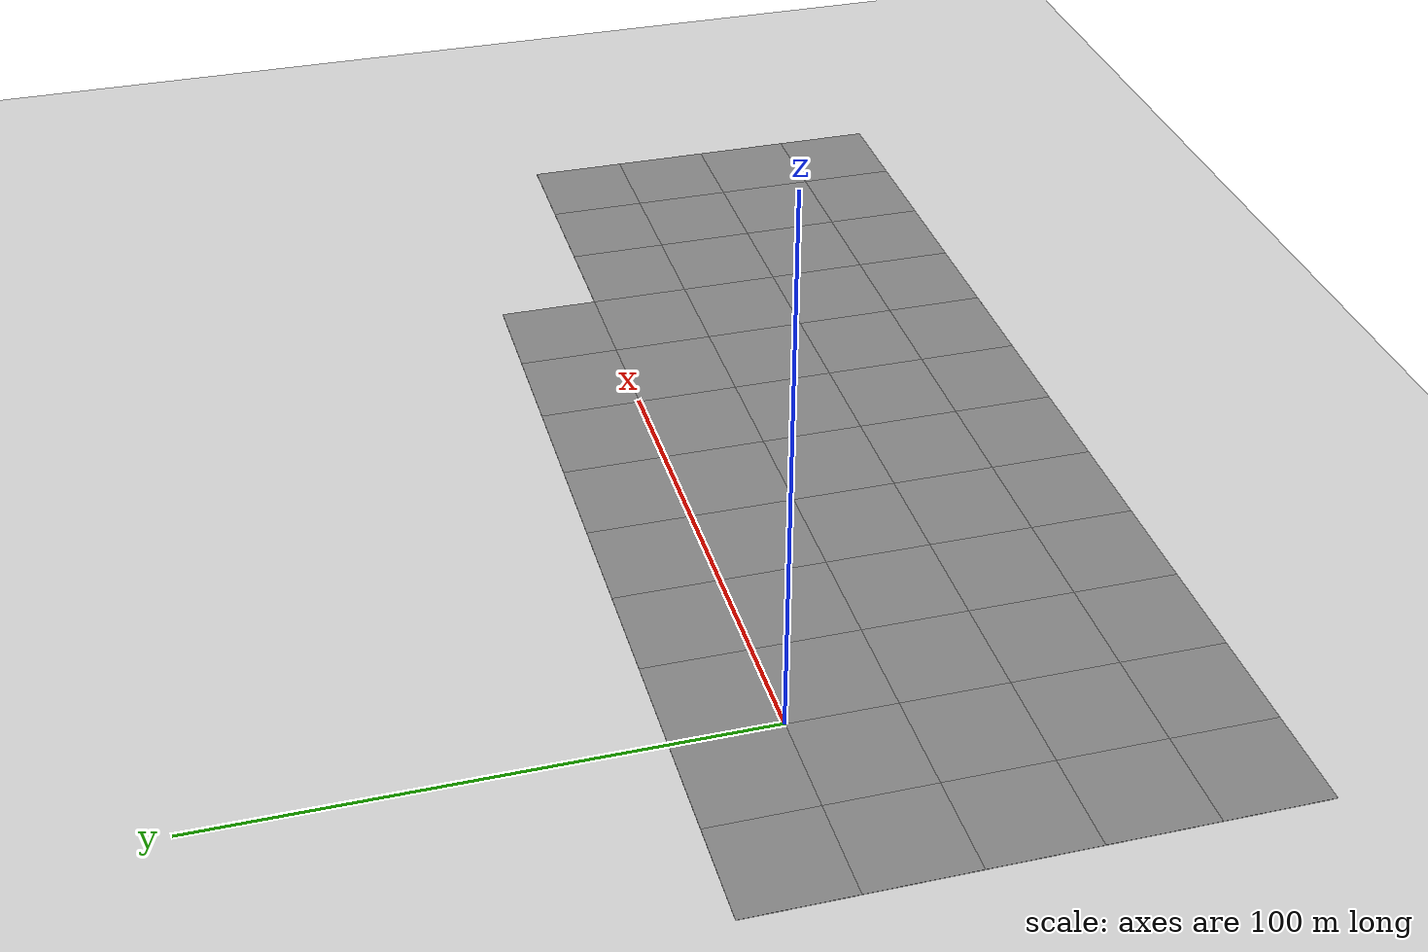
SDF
<sdf version="1.9">
 <world name="test_city_4">
  <model name="ground_plane">
   <static>true</static>
   <link name="link">
    <collision name="collision">
     <geometry><plane><normal>0 0 1</normal><size>500 500</size></plane></geometry>
    </collision>
    <visual name="visual">
     <geometry><plane><normal>0 0 1</normal><size>500 500</size></plane></geometry>
     <material>
      <ambient>0.8 0.8 0.8 1</ambient>
      <diffuse>0.8 0.8 0.8 1</diffuse>
      <specular>0.8 0.8 0.8 1</specular>
     </material>
    </visual>
   </link>
  </model>
  <model name="asphalt_plane">
   <static>1</static>
   <link name="link">
    <collision name="collision"><geometry><box><size>20 20 0.1</size></box></geometry></collision>
    <visual name="visual">
     <cast_shadows>0</cast_shadows>
     <geometry><box><size>20 20 0.1</size></box></geometry>
     <material>
      <ambient>0.5 0.5 0.5 1</ambient>
      <diffuse>0.5 0.5 0.5 1</diffuse>
      <specular>0.2 0.2 0.2 1</specular>
      <pbr><metal><albedo_map>model://asphalt_plane/materials/textures/tarmac.png</albedo_map></metal></pbr>
     </material>
    </visual>
   </link>
   <pose>-30 -30 0 0 0 0</pose>
  </model>
  <model name="asphalt_plane_1">
   <static>1</static>
   <link name="link">
    <collision name="collision"><geometry><box><size>20 20 0.1</size></box></geometry></collision>
    <visual name="visual">
     <cast_shadows>0</cast_shadows>
     <geometry><box><size>20 20 0.1</size></box></geometry>
     <material>
      <ambient>0.5 0.5 0.5 1</ambient>
      <diffuse>0.5 0.5 0.5 1</diffuse>
      <specular>0.2 0.2 0.2 1</specular>
      <pbr><metal><albedo_map>model://asphalt_plane/materials/textures/tarmac.png</albedo_map></metal></pbr>
     </material>
    </visual>
   </link>
   <pose>-30 -10 0 0 0 0</pose>
  </model>
  <model name="asphalt_plane_2">
   <static>1</static>
   <link name="link">
    <collision name="collision"><geometry><box><size>20 20 0.1</size></box></geometry></collision>
    <visual name="visual">
     <cast_shadows>0</cast_shadows>
     <geometry><box><size>20 20 0.1</size></box></geometry>
     <material>
      <ambient>0.5 0.5 0.5 1</ambient>
      <diffuse>0.5 0.5 0.5 1</diffuse>
      <specular>0.2 0.2 0.2 1</specular>
      <pbr><metal><albedo_map>model://asphalt_plane/materials/textures/tarmac.png</albedo_map></metal></pbr>
     </material>
    </visual>
   </link>
   <pose>-30 10 0 0 0 0</pose>
  </model>
  <model name="asphalt_plane_12">
   <static>1</static>
   <link name="link">
    <collision name="collision"><geometry><box><size>20 20 0.1</size></box></geometry></collision>
    <visual name="visual">
     <cast_shadows>0</cast_shadows>
     <geometry><box><size>20 20 0.1</size></box></geometry>
     <material>
      <ambient>0.5 0.5 0.5 1</ambient>
      <diffuse>0.5 0.5 0.5 1</diffuse>
      <specular>0.2 0.2 0.2 1</specular>
      <pbr><metal><albedo_map>model://asphalt_plane/materials/textures/tarmac.png</albedo_map></metal></pbr>
     </material>
    </visual>
   </link>
   <pose>-10 -30 0 0 0 0</pose>
  </model>
  <model name="asphalt_plane_13">
   <static>1</static>
   <link name="link">
    <collision name="collision"><geometry><box><size>20 20 0.1</size></box></geometry></collision>
    <visual name="visual">
     <cast_shadows>0</cast_shadows>
     <geometry><box><size>20 20 0.1</size></box></geometry>
     <material>
      <ambient>0.5 0.5 0.5 1</ambient>
      <diffuse>0.5 0.5 0.5 1</diffuse>
      <specular>0.2 0.2 0.2 1</specular>
      <pbr><metal><albedo_map>model://asphalt_plane/materials/textures/tarmac.png</albedo_map></metal></pbr>
     </material>
    </visual>
   </link>
   <pose>-10 -10 0 0 0 0</pose>
  </model>
  <model name="asphalt_plane_14">
   <static>1</static>
   <link name="link">
    <collision name="collision"><geometry><box><size>20 20 0.1</size></box></geometry></collision>
    <visual name="visual">
     <cast_shadows>0</cast_shadows>
     <geometry><box><size>20 20 0.1</size></box></geometry>
     <material>
      <ambient>0.5 0.5 0.5 1</ambient>
      <diffuse>0.5 0.5 0.5 1</diffuse>
      <specular>0.2 0.2 0.2 1</specular>
      <pbr><metal><albedo_map>model://asphalt_plane/materials/textures/tarmac.png</albedo_map></metal></pbr>
     </material>
    </visual>
   </link>
   <pose>-10 10 0 0 0 0</pose>
  </model>
  <model name="asphalt_plane_24">
   <static>1</static>
   <link name="link">
    <collision name="collision"><geometry><box><size>20 20 0.1</size></box></geometry></collision>
    <visual name="visual">
     <cast_shadows>0</cast_shadows>
     <geometry><box><size>20 20 0.1</size></box></geometry>
     <material>
      <ambient>0.5 0.5 0.5 1</ambient>
      <diffuse>0.5 0.5 0.5 1</diffuse>
      <specular>0.2 0.2 0.2 1</specular>
      <pbr><metal><albedo_map>model://asphalt_plane/materials/textures/tarmac.png</albedo_map></metal></pbr>
     </material>
    </visual>
   </link>
   <pose>10 -30 0 0 0 0</pose>
  </model>
  <model name="asphalt_plane_25">
   <static>1</static>
   <link name="link">
    <collision name="collision"><geometry><box><size>20 20 0.1</size></box></geometry></collision>
    <visual name="visual">
     <cast_shadows>0</cast_shadows>
     <geometry><box><size>20 20 0.1</size></box></geometry>
     <material>
      <ambient>0.5 0.5 0.5 1</ambient>
      <diffuse>0.5 0.5 0.5 1</diffuse>
      <specular>0.2 0.2 0.2 1</specular>
      <pbr><metal><albedo_map>model://asphalt_plane/materials/textures/tarmac.png</albedo_map></metal></pbr>
     </material>
    </visual>
   </link>
   <pose>10 -10 0 0 0 0</pose>
  </model>
  <model name="asphalt_plane_26">
   <static>1</static>
   <link name="link">
    <collision name="collision"><geometry><box><size>20 20 0.1</size></box></geometry></collision>
    <visual name="visual">
     <cast_shadows>0</cast_shadows>
     <geometry><box><size>20 20 0.1</size></box></geometry>
     <material>
      <ambient>0.5 0.5 0.5 1</ambient>
      <diffuse>0.5 0.5 0.5 1</diffuse>
      <specular>0.2 0.2 0.2 1</specular>
      <pbr><metal><albedo_map>model://asphalt_plane/materials/textures/tarmac.png</albedo_map></metal></pbr>
     </material>
    </visual>
   </link>
   <pose>10 10 0 0 0 0</pose>
  </model>
  <model name="asphalt_plane_36">
   <static>1</static>
   <link name="link">
    <collision name="collision"><geometry><box><size>20 20 0.1</size></box></geometry></collision>
    <visual name="visual">
     <cast_shadows>0</cast_shadows>
     <geometry><box><size>20 20 0.1</size></box></geometry>
     <material>
      <ambient>0.5 0.5 0.5 1</ambient>
      <diffuse>0.5 0.5 0.5 1</diffuse>
      <specular>0.2 0.2 0.2 1</specular>
      <pbr><metal><albedo_map>model://asphalt_plane/materials/textures/tarmac.png</albedo_map></metal></pbr>
     </material>
    </visual>
   </link>
   <pose>30 -30 0 0 0 0</pose>
  </model>
  <model name="asphalt_plane_37">
   <static>1</static>
   <link name="link">
    <collision name="collision"><geometry><box><size>20 20 0.1</size></box></geometry></collision>
    <visual name="visual">
     <cast_shadows>0</cast_shadows>
     <geometry><box><size>20 20 0.1</size></box></geometry>
     <material>
      <ambient>0.5 0.5 0.5 1</ambient>
      <diffuse>0.5 0.5 0.5 1</diffuse>
      <specular>0.2 0.2 0.2 1</specular>
      <pbr><metal><albedo_map>model://asphalt_plane/materials/textures/tarmac.png</albedo_map></metal></pbr>
     </material>
    </visual>
   </link>
   <pose>30 -10 0 0 0 0</pose>
  </model>
  <model name="asphalt_plane_38">
   <static>1</static>
   <link name="link">
    <collision name="collision"><geometry><box><size>20 20 0.1</size></box></geometry></collision>
    <visual name="visual">
     <cast_shadows>0</cast_shadows>
     <geometry><box><size>20 20 0.1</size></box></geometry>
     <material>
      <ambient>0.5 0.5 0.5 1</ambient>
      <diffuse>0.5 0.5 0.5 1</diffuse>
      <specular>0.2 0.2 0.2 1</specular>
      <pbr><metal><albedo_map>model://asphalt_plane/materials/textures/tarmac.png</albedo_map></metal></pbr>
     </material>
    </visual>
   </link>
   <pose>30 10 0 0 0 0</pose>
  </model>
  <model name="asphalt_plane_48">
   <static>1</static>
   <link name="link">
    <collision name="collision"><geometry><box><size>20 20 0.1</size></box></geometry></collision>
    <visual name="visual">
     <cast_shadows>0</cast_shadows>
     <geometry><box><size>20 20 0.1</size></box></geometry>
     <material>
      <ambient>0.5 0.5 0.5 1</ambient>
      <diffuse>0.5 0.5 0.5 1</diffuse>
      <specular>0.2 0.2 0.2 1</specular>
      <pbr><metal><albedo_map>model://asphalt_plane/materials/textures/tarmac.png</albedo_map></metal></pbr>
     </material>
    </visual>
   </link>
   <pose>50 -30 0 0 0 0</pose>
  </model>
  <model name="asphalt_plane_49">
   <static>1</static>
   <link name="link">
    <collision name="collision"><geometry><box><size>20 20 0.1</size></box></geometry></collision>
    <visual name="visual">
     <cast_shadows>0</cast_shadows>
     <geometry><box><size>20 20 0.1</size></box></geometry>
     <material>
      <ambient>0.5 0.5 0.5 1</ambient>
      <diffuse>0.5 0.5 0.5 1</diffuse>
      <specular>0.2 0.2 0.2 1</specular>
      <pbr><metal><albedo_map>model://asphalt_plane/materials/textures/tarmac.png</albedo_map></metal></pbr>
     </material>
    </visual>
   </link>
   <pose>50 -10 0 0 0 0</pose>
  </model>
  <model name="asphalt_plane_50">
   <static>1</static>
   <link name="link">
    <collision name="collision"><geometry><box><size>20 20 0.1</size></box></geometry></collision>
    <visual name="visual">
     <cast_shadows>0</cast_shadows>
     <geometry><box><size>20 20 0.1</size></box></geometry>
     <material>
      <ambient>0.5 0.5 0.5 1</ambient>
      <diffuse>0.5 0.5 0.5 1</diffuse>
      <specular>0.2 0.2 0.2 1</specular>
      <pbr><metal><albedo_map>model://asphalt_plane/materials/textures/tarmac.png</albedo_map></metal></pbr>
     </material>
    </visual>
   </link>
   <pose>50 10 0 0 0 0</pose>
  </model>
  <model name="asphalt_plane_60">
   <static>1</static>
   <link name="link">
    <collision name="collision"><geometry><box><size>20 20 0.1</size></box></geometry></collision>
    <visual name="visual">
     <cast_shadows>0</cast_shadows>
     <geometry><box><size>20 20 0.1</size></box></geometry>
     <material>
      <ambient>0.5 0.5 0.5 1</ambient>
      <diffuse>0.5 0.5 0.5 1</diffuse>
      <specular>0.2 0.2 0.2 1</specular>
      <pbr><metal><albedo_map>model://asphalt_plane/materials/textures/tarmac.png</albedo_map></metal></pbr>
     </material>
    </visual>
   </link>
   <pose>70 -30 0 0 0 0</pose>
  </model>
  <model name="asphalt_plane_61">
   <static>1</static>
   <link name="link">
    <collision name="collision"><geometry><box><size>20 20 0.1</size></box></geometry></collision>
    <visual name="visual">
     <cast_shadows>0</cast_shadows>
     <geometry><box><size>20 20 0.1</size></box></geometry>
     <material>
      <ambient>0.5 0.5 0.5 1</ambient>
      <diffuse>0.5 0.5 0.5 1</diffuse>
      <specular>0.2 0.2 0.2 1</specular>
      <pbr><metal><albedo_map>model://asphalt_plane/materials/textures/tarmac.png</albedo_map></metal></pbr>
     </material>
    </visual>
   </link>
   <pose>70 -10 0 0 0 0</pose>
  </model>
  <model name="asphalt_plane_62">
   <static>1</static>
   <link name="link">
    <collision name="collision"><geometry><box><size>20 20 0.1</size></box></geometry></collision>
    <visual name="visual">
     <cast_shadows>0</cast_shadows>
     <geometry><box><size>20 20 0.1</size></box></geometry>
     <material>
      <ambient>0.5 0.5 0.5 1</ambient>
      <diffuse>0.5 0.5 0.5 1</diffuse>
      <specular>0.2 0.2 0.2 1</specular>
      <pbr><metal><albedo_map>model://asphalt_plane/materials/textures/tarmac.png</albedo_map></metal></pbr>
     </material>
    </visual>
   </link>
   <pose>70 10 0 0 0 0</pose>
  </model>
  <model name="asphalt_plane_72">
   <static>1</static>
   <link name="link">
    <collision name="collision"><geometry><box><size>20 20 0.1</size></box></geometry></collision>
    <visual name="visual">
     <cast_shadows>0</cast_shadows>
     <geometry><box><size>20 20 0.1</size></box></geometry>
     <material>
      <ambient>0.5 0.5 0.5 1</ambient>
      <diffuse>0.5 0.5 0.5 1</diffuse>
      <specular>0.2 0.2 0.2 1</specular>
      <pbr><metal><albedo_map>model://asphalt_plane/materials/textures/tarmac.png</albedo_map></metal></pbr>
     </material>
    </visual>
   </link>
   <pose>90 -30 0 0 0 0</pose>
  </model>
  <model name="asphalt_plane_73">
   <static>1</static>
   <link name="link">
    <collision name="collision"><geometry><box><size>20 20 0.1</size></box></geometry></collision>
    <visual name="visual">
     <cast_shadows>0</cast_shadows>
     <geometry><box><size>20 20 0.1</size></box></geometry>
     <material>
      <ambient>0.5 0.5 0.5 1</ambient>
      <diffuse>0.5 0.5 0.5 1</diffuse>
      <specular>0.2 0.2 0.2 1</specular>
      <pbr><metal><albedo_map>model://asphalt_plane/materials/textures/tarmac.png</albedo_map></metal></pbr>
     </material>
    </visual>
   </link>
   <pose>90 -10 0 0 0 0</pose>
  </model>
  <model name="asphalt_plane_74">
   <static>1</static>
   <link name="link">
    <collision name="collision"><geometry><box><size>20 20 0.1</size></box></geometry></collision>
    <visual name="visual">
     <cast_shadows>0</cast_shadows>
     <geometry><box><size>20 20 0.1</size></box></geometry>
     <material>
      <ambient>0.5 0.5 0.5 1</ambient>
      <diffuse>0.5 0.5 0.5 1</diffuse>
      <specular>0.2 0.2 0.2 1</specular>
      <pbr><metal><albedo_map>model://asphalt_plane/materials/textures/tarmac.png</albedo_map></metal></pbr>
     </material>
    </visual>
   </link>
   <pose>90 10 0 0 0 0</pose>
  </model>
  <model name="asphalt_plane_84">
   <static>1</static>
   <link name="link">
    <collision name="collision"><geometry><box><size>20 20 0.1</size></box></geometry></collision>
    <visual name="visual">
     <cast_shadows>0</cast_shadows>
     <geometry><box><size>20 20 0.1</size></box></geometry>
     <material>
      <ambient>0.5 0.5 0.5 1</ambient>
      <diffuse>0.5 0.5 0.5 1</diffuse>
      <specular>0.2 0.2 0.2 1</specular>
      <pbr><metal><albedo_map>model://asphalt_plane/materials/textures/tarmac.png</albedo_map></metal></pbr>
     </material>
    </visual>
   </link>
   <pose>110 -30 0 0 0 0</pose>
  </model>
  <model name="asphalt_plane_85">
   <static>1</static>
   <link name="link">
    <collision name="collision"><geometry><box><size>20 20 0.1</size></box></geometry></collision>
    <visual name="visual">
     <cast_shadows>0</cast_shadows>
     <geometry><box><size>20 20 0.1</size></box></geometry>
     <material>
      <ambient>0.5 0.5 0.5 1</ambient>
      <diffuse>0.5 0.5 0.5 1</diffuse>
      <specular>0.2 0.2 0.2 1</specular>
      <pbr><metal><albedo_map>model://asphalt_plane/materials/textures/tarmac.png</albedo_map></metal></pbr>
     </material>
    </visual>
   </link>
   <pose>110 -10 0 0 0 0</pose>
  </model>
  <model name="asphalt_plane_86">
   <static>1</static>
   <link name="link">
    <collision name="collision"><geometry><box><size>20 20 0.1</size></box></geometry></collision>
    <visual name="visual">
     <cast_shadows>0</cast_shadows>
     <geometry><box><size>20 20 0.1</size></box></geometry>
     <material>
      <ambient>0.5 0.5 0.5 1</ambient>
      <diffuse>0.5 0.5 0.5 1</diffuse>
      <specular>0.2 0.2 0.2 1</specular>
      <pbr><metal><albedo_map>model://asphalt_plane/materials/textures/tarmac.png</albedo_map></metal></pbr>
     </material>
    </visual>
   </link>
   <pose>110 10 0 0 0 0</pose>
  </model>
  <model name="asphalt_plane_96">
   <static>1</static>
   <link name="link">
    <collision name="collision"><geometry><box><size>20 20 0.1</size></box></geometry></collision>
    <visual name="visual">
     <cast_shadows>0</cast_shadows>
     <geometry><box><size>20 20 0.1</size></box></geometry>
     <material>
      <ambient>0.5 0.5 0.5 1</ambient>
      <diffuse>0.5 0.5 0.5 1</diffuse>
      <specular>0.2 0.2 0.2 1</specular>
      <pbr><metal><albedo_map>model://asphalt_plane/materials/textures/tarmac.png</albedo_map></metal></pbr>
     </material>
    </visual>
   </link>
   <pose>130 -30 0 0 0 0</pose>
  </model>
  <model name="asphalt_plane_97">
   <static>1</static>
   <link name="link">
    <collision name="collision"><geometry><box><size>20 20 0.1</size></box></geometry></collision>
    <visual name="visual">
     <cast_shadows>0</cast_shadows>
     <geometry><box><size>20 20 0.1</size></box></geometry>
     <material>
      <ambient>0.5 0.5 0.5 1</ambient>
      <diffuse>0.5 0.5 0.5 1</diffuse>
      <specular>0.2 0.2 0.2 1</specular>
      <pbr><metal><albedo_map>model://asphalt_plane/materials/textures/tarmac.png</albedo_map></metal></pbr>
     </material>
    </visual>
   </link>
   <pose>130 -10 0 0 0 0</pose>
  </model>
  <model name="asphalt_plane_98">
   <static>1</static>
   <link name="link">
    <collision name="collision"><geometry><box><size>20 20 0.1</size></box></geometry></collision>
    <visual name="visual">
     <cast_shadows>0</cast_shadows>
     <geometry><box><size>20 20 0.1</size></box></geometry>
     <material>
      <ambient>0.5 0.5 0.5 1</ambient>
      <diffuse>0.5 0.5 0.5 1</diffuse>
      <specular>0.2 0.2 0.2 1</specular>
      <pbr><metal><albedo_map>model://asphalt_plane/materials/textures/tarmac.png</albedo_map></metal></pbr>
     </material>
    </visual>
   </link>
   <pose>130 10 0 0 0 0</pose>
  </model>
  <model name="asphalt_plane_108">
   <static>1</static>
   <link name="link">
    <collision name="collision"><geometry><box><size>20 20 0.1</size></box></geometry></collision>
    <visual name="visual">
     <cast_shadows>0</cast_shadows>
     <geometry><box><size>20 20 0.1</size></box></geometry>
     <material>
      <ambient>0.5 0.5 0.5 1</ambient>
      <diffuse>0.5 0.5 0.5 1</diffuse>
      <specular>0.2 0.2 0.2 1</specular>
      <pbr><metal><albedo_map>model://asphalt_plane/materials/textures/tarmac.png</albedo_map></metal></pbr>
     </material>
    </visual>
   </link>
   <pose>150 -30 0 0 0 0</pose>
  </model>
  <model name="asphalt_plane_109">
   <static>1</static>
   <link name="link">
    <collision name="collision"><geometry><box><size>20 20 0.1</size></box></geometry></collision>
    <visual name="visual">
     <cast_shadows>0</cast_shadows>
     <geometry><box><size>20 20 0.1</size></box></geometry>
     <material>
      <ambient>0.5 0.5 0.5 1</ambient>
      <diffuse>0.5 0.5 0.5 1</diffuse>
      <specular>0.2 0.2 0.2 1</specular>
      <pbr><metal><albedo_map>model://asphalt_plane/materials/textures/tarmac.png</albedo_map></metal></pbr>
     </material>
    </visual>
   </link>
   <pose>150 -10 0 0 0 0</pose>
  </model>
  <model name="asphalt_plane_120">
   <static>1</static>
   <link name="link">
    <collision name="collision"><geometry><box><size>20 20 0.1</size></box></geometry></collision>
    <visual name="visual">
     <cast_shadows>0</cast_shadows>
     <geometry><box><size>20 20 0.1</size></box></geometry>
     <material>
      <ambient>0.5 0.5 0.5 1</ambient>
      <diffuse>0.5 0.5 0.5 1</diffuse>
      <specular>0.2 0.2 0.2 1</specular>
      <pbr><metal><albedo_map>model://asphalt_plane/materials/textures/tarmac.png</albedo_map></metal></pbr>
     </material>
    </visual>
   </link>
   <pose>170 -30 0 0 0 0</pose>
  </model>
  <model name="asphalt_plane_121">
   <static>1</static>
   <link name="link">
    <collision name="collision"><geometry><box><size>20 20 0.1</size></box></geometry></collision>
    <visual name="visual">
     <cast_shadows>0</cast_shadows>
     <geometry><box><size>20 20 0.1</size></box></geometry>
     <material>
      <ambient>0.5 0.5 0.5 1</ambient>
      <diffuse>0.5 0.5 0.5 1</diffuse>
      <specular>0.2 0.2 0.2 1</specular>
      <pbr><metal><albedo_map>model://asphalt_plane/materials/textures/tarmac.png</albedo_map></metal></pbr>
     </material>
    </visual>
   </link>
   <pose>170 -10 0 0 0 0</pose>
  </model>
  <model name="asphalt_plane_132">
   <static>1</static>
   <link name="link">
    <collision name="collision"><geometry><box><size>20 20 0.1</size></box></geometry></collision>
    <visual name="visual">
     <cast_shadows>0</cast_shadows>
     <geometry><box><size>20 20 0.1</size></box></geometry>
     <material>
      <ambient>0.5 0.5 0.5 1</ambient>
      <diffuse>0.5 0.5 0.5 1</diffuse>
      <specular>0.2 0.2 0.2 1</specular>
      <pbr><metal><albedo_map>model://asphalt_plane/materials/textures/tarmac.png</albedo_map></metal></pbr>
     </material>
    </visual>
   </link>
   <pose>190 -30 0 0 0 0</pose>
  </model>
  <model name="asphalt_plane_133">
   <static>1</static>
   <link name="link">
    <collision name="collision"><geometry><box><size>20 20 0.1</size></box></geometry></collision>
    <visual name="visual">
     <cast_shadows>0</cast_shadows>
     <geometry><box><size>20 20 0.1</size></box></geometry>
     <material>
      <ambient>0.5 0.5 0.5 1</ambient>
      <diffuse>0.5 0.5 0.5 1</diffuse>
      <specular>0.2 0.2 0.2 1</specular>
      <pbr><metal><albedo_map>model://asphalt_plane/materials/textures/tarmac.png</albedo_map></metal></pbr>
     </material>
    </visual>
   </link>
   <pose>190 -10 0 0 0 0</pose>
  </model>
  <model name="asphalt_plane_144">
   <static>1</static>
   <link name="link">
    <collision name="collision"><geometry><box><size>20 20 0.1</size></box></geometry></collision>
    <visual name="visual">
     <cast_shadows>0</cast_shadows>
     <geometry><box><size>20 20 0.1</size></box></geometry>
     <material>
      <ambient>0.5 0.5 0.5 1</ambient>
      <diffuse>0.5 0.5 0.5 1</diffuse>
      <specular>0.2 0.2 0.2 1</specular>
      <pbr><metal><albedo_map>model://asphalt_plane/materials/textures/tarmac.png</albedo_map></metal></pbr>
     </material>
    </visual>
   </link>
   <pose>-30 -50 0 0 0 0</pose>
  </model>
  <model name="asphalt_plane_145">
   <static>1</static>
   <link name="link">
    <collision name="collision"><geometry><box><size>20 20 0.1</size></box></geometry></collision>
    <visual name="visual">
     <cast_shadows>0</cast_shadows>
     <geometry><box><size>20 20 0.1</size></box></geometry>
     <material>
      <ambient>0.5 0.5 0.5 1</ambient>
      <diffuse>0.5 0.5 0.5 1</diffuse>
      <specular>0.2 0.2 0.2 1</specular>
      <pbr><metal><albedo_map>model://asphalt_plane/materials/textures/tarmac.png</albedo_map></metal></pbr>
     </material>
    </visual>
   </link>
   <pose>-10 -50 0 0 0 0</pose>
  </model>
  <model name="asphalt_plane_146">
   <static>1</static>
   <link name="link">
    <collision name="collision"><geometry><box><size>20 20 0.1</size></box></geometry></collision>
    <visual name="visual">
     <cast_shadows>0</cast_shadows>
     <geometry><box><size>20 20 0.1</size></box></geometry>
     <material>
      <ambient>0.5 0.5 0.5 1</ambient>
      <diffuse>0.5 0.5 0.5 1</diffuse>
      <specular>0.2 0.2 0.2 1</specular>
      <pbr><metal><albedo_map>model://asphalt_plane/materials/textures/tarmac.png</albedo_map></metal></pbr>
     </material>
    </visual>
   </link>
   <pose>10 -50 0 0 0 0</pose>
  </model>
  <model name="asphalt_plane_147">
   <static>1</static>
   <link name="link">
    <collision name="collision"><geometry><box><size>20 20 0.1</size></box></geometry></collision>
    <visual name="visual">
     <cast_shadows>0</cast_shadows>
     <geometry><box><size>20 20 0.1</size></box></geometry>
     <material>
      <ambient>0.5 0.5 0.5 1</ambient>
      <diffuse>0.5 0.5 0.5 1</diffuse>
      <specular>0.2 0.2 0.2 1</specular>
      <pbr><metal><albedo_map>model://asphalt_plane/materials/textures/tarmac.png</albedo_map></metal></pbr>
     </material>
    </visual>
   </link>
   <pose>30 -50 0 0 0 0</pose>
  </model>
  <model name="asphalt_plane_148">
   <static>1</static>
   <link name="link">
    <collision name="collision"><geometry><box><size>20 20 0.1</size></box></geometry></collision>
    <visual name="visual">
     <cast_shadows>0</cast_shadows>
     <geometry><box><size>20 20 0.1</size></box></geometry>
     <material>
      <ambient>0.5 0.5 0.5 1</ambient>
      <diffuse>0.5 0.5 0.5 1</diffuse>
      <specular>0.2 0.2 0.2 1</specular>
      <pbr><metal><albedo_map>model://asphalt_plane/materials/textures/tarmac.png</albedo_map></metal></pbr>
     </material>
    </visual>
   </link>
   <pose>50 -50 0 0 0 0</pose>
  </model>
  <model name="asphalt_plane_149">
   <static>1</static>
   <link name="link">
    <collision name="collision"><geometry><box><size>20 20 0.1</size></box></geometry></collision>
    <visual name="visual">
     <cast_shadows>0</cast_shadows>
     <geometry><box><size>20 20 0.1</size></box></geometry>
     <material>
      <ambient>0.5 0.5 0.5 1</ambient>
      <diffuse>0.5 0.5 0.5 1</diffuse>
      <specular>0.2 0.2 0.2 1</specular>
      <pbr><metal><albedo_map>model://asphalt_plane/materials/textures/tarmac.png</albedo_map></metal></pbr>
     </material>
    </visual>
   </link>
   <pose>70 -50 0 0 0 0</pose>
  </model>
  <model name="asphalt_plane_150">
   <static>1</static>
   <link name="link">
    <collision name="collision"><geometry><box><size>20 20 0.1</size></box></geometry></collision>
    <visual name="visual">
     <cast_shadows>0</cast_shadows>
     <geometry><box><size>20 20 0.1</size></box></geometry>
     <material>
      <ambient>0.5 0.5 0.5 1</ambient>
      <diffuse>0.5 0.5 0.5 1</diffuse>
      <specular>0.2 0.2 0.2 1</specular>
      <pbr><metal><albedo_map>model://asphalt_plane/materials/textures/tarmac.png</albedo_map></metal></pbr>
     </material>
    </visual>
   </link>
   <pose>90 -50 0 0 0 0</pose>
  </model>
  <model name="asphalt_plane_151">
   <static>1</static>
   <link name="link">
    <collision name="collision"><geometry><box><size>20 20 0.1</size></box></geometry></collision>
    <visual name="visual">
     <cast_shadows>0</cast_shadows>
     <geometry><box><size>20 20 0.1</size></box></geometry>
     <material>
      <ambient>0.5 0.5 0.5 1</ambient>
      <diffuse>0.5 0.5 0.5 1</diffuse>
      <specular>0.2 0.2 0.2 1</specular>
      <pbr><metal><albedo_map>model://asphalt_plane/materials/textures/tarmac.png</albedo_map></metal></pbr>
     </material>
    </visual>
   </link>
   <pose>110 -50 0 0 0 0</pose>
  </model>
  <model name="asphalt_plane_152">
   <static>1</static>
   <link name="link">
    <collision name="collision"><geometry><box><size>20 20 0.1</size></box></geometry></collision>
    <visual name="visual">
     <cast_shadows>0</cast_shadows>
     <geometry><box><size>20 20 0.1</size></box></geometry>
     <material>
      <ambient>0.5 0.5 0.5 1</ambient>
      <diffuse>0.5 0.5 0.5 1</diffuse>
      <specular>0.2 0.2 0.2 1</specular>
      <pbr><metal><albedo_map>model://asphalt_plane/materials/textures/tarmac.png</albedo_map></metal></pbr>
     </material>
    </visual>
   </link>
   <pose>130 -50 0 0 0 0</pose>
  </model>
  <model name="asphalt_plane_153">
   <static>1</static>
   <link name="link">
    <collision name="collision"><geometry><box><size>20 20 0.1</size></box></geometry></collision>
    <visual name="visual">
     <cast_shadows>0</cast_shadows>
     <geometry><box><size>20 20 0.1</size></box></geometry>
     <material>
      <ambient>0.5 0.5 0.5 1</ambient>
      <diffuse>0.5 0.5 0.5 1</diffuse>
      <specular>0.2 0.2 0.2 1</specular>
      <pbr><metal><albedo_map>model://asphalt_plane/materials/textures/tarmac.png</albedo_map></metal></pbr>
     </material>
    </visual>
   </link>
   <pose>150 -50 0 0 0 0</pose>
  </model>
  <model name="asphalt_plane_154">
   <static>1</static>
   <link name="link">
    <collision name="collision"><geometry><box><size>20 20 0.1</size></box></geometry></collision>
    <visual name="visual">
     <cast_shadows>0</cast_shadows>
     <geometry><box><size>20 20 0.1</size></box></geometry>
     <material>
      <ambient>0.5 0.5 0.5 1</ambient>
      <diffuse>0.5 0.5 0.5 1</diffuse>
      <specular>0.2 0.2 0.2 1</specular>
      <pbr><metal><albedo_map>model://asphalt_plane/materials/textures/tarmac.png</albedo_map></metal></pbr>
     </material>
    </visual>
   </link>
   <pose>170 -50 0 0 0 0</pose>
  </model>
  <model name="asphalt_plane_155">
   <static>1</static>
   <link name="link">
    <collision name="collision"><geometry><box><size>20 20 0.1</size></box></geometry></collision>
    <visual name="visual">
     <cast_shadows>0</cast_shadows>
     <geometry><box><size>20 20 0.1</size></box></geometry>
     <material>
      <ambient>0.5 0.5 0.5 1</ambient>
      <diffuse>0.5 0.5 0.5 1</diffuse>
      <specular>0.2 0.2 0.2 1</specular>
      <pbr><metal><albedo_map>model://asphalt_plane/materials/textures/tarmac.png</albedo_map></metal></pbr>
     </material>
    </visual>
   </link>
   <pose>190 -50 0 0 0 0</pose>
  </model>
  <model name="asphalt_plane_156">
   <static>1</static>
   <link name="link">
    <collision name="collision"><geometry><box><size>20 20 0.1</size></box></geometry></collision>
    <visual name="visual">
     <cast_shadows>0</cast_shadows>
     <geometry><box><size>20 20 0.1</size></box></geometry>
     <material>
      <ambient>0.5 0.5 0.5 1</ambient>
      <diffuse>0.5 0.5 0.5 1</diffuse>
      <specular>0.2 0.2 0.2 1</specular>
      <pbr><metal><albedo_map>model://asphalt_plane/materials/textures/tarmac.png</albedo_map></metal></pbr>
     </material>
    </visual>
   </link>
   <pose>-30 -70 0 0 0 0</pose>
  </model>
  <model name="asphalt_plane_157">
   <static>1</static>
   <link name="link">
    <collision name="collision"><geometry><box><size>20 20 0.1</size></box></geometry></collision>
    <visual name="visual">
     <cast_shadows>0</cast_shadows>
     <geometry><box><size>20 20 0.1</size></box></geometry>
     <material>
      <ambient>0.5 0.5 0.5 1</ambient>
      <diffuse>0.5 0.5 0.5 1</diffuse>
      <specular>0.2 0.2 0.2 1</specular>
      <pbr><metal><albedo_map>model://asphalt_plane/materials/textures/tarmac.png</albedo_map></metal></pbr>
     </material>
    </visual>
   </link>
   <pose>-10 -70 0 0 0 0</pose>
  </model>
  <model name="asphalt_plane_158">
   <static>1</static>
   <link name="link">
    <collision name="collision"><geometry><box><size>20 20 0.1</size></box></geometry></collision>
    <visual name="visual">
     <cast_shadows>0</cast_shadows>
     <geometry><box><size>20 20 0.1</size></box></geometry>
     <material>
      <ambient>0.5 0.5 0.5 1</ambient>
      <diffuse>0.5 0.5 0.5 1</diffuse>
      <specular>0.2 0.2 0.2 1</specular>
      <pbr><metal><albedo_map>model://asphalt_plane/materials/textures/tarmac.png</albedo_map></metal></pbr>
     </material>
    </visual>
   </link>
   <pose>10 -70 0 0 0 0</pose>
  </model>
  <model name="asphalt_plane_159">
   <static>1</static>
   <link name="link">
    <collision name="collision"><geometry><box><size>20 20 0.1</size></box></geometry></collision>
    <visual name="visual">
     <cast_shadows>0</cast_shadows>
     <geometry><box><size>20 20 0.1</size></box></geometry>
     <material>
      <ambient>0.5 0.5 0.5 1</ambient>
      <diffuse>0.5 0.5 0.5 1</diffuse>
      <specular>0.2 0.2 0.2 1</specular>
      <pbr><metal><albedo_map>model://asphalt_plane/materials/textures/tarmac.png</albedo_map></metal></pbr>
     </material>
    </visual>
   </link>
   <pose>30 -70 0 0 0 0</pose>
  </model>
  <model name="asphalt_plane_160">
   <static>1</static>
   <link name="link">
    <collision name="collision"><geometry><box><size>20 20 0.1</size></box></geometry></collision>
    <visual name="visual">
     <cast_shadows>0</cast_shadows>
     <geometry><box><size>20 20 0.1</size></box></geometry>
     <material>
      <ambient>0.5 0.5 0.5 1</ambient>
      <diffuse>0.5 0.5 0.5 1</diffuse>
      <specular>0.2 0.2 0.2 1</specular>
      <pbr><metal><albedo_map>model://asphalt_plane/materials/textures/tarmac.png</albedo_map></metal></pbr>
     </material>
    </visual>
   </link>
   <pose>50 -70 0 0 0 0</pose>
  </model>
  <model name="asphalt_plane_161">
   <static>1</static>
   <link name="link">
    <collision name="collision"><geometry><box><size>20 20 0.1</size></box></geometry></collision>
    <visual name="visual">
     <cast_shadows>0</cast_shadows>
     <geometry><box><size>20 20 0.1</size></box></geometry>
     <material>
      <ambient>0.5 0.5 0.5 1</ambient>
      <diffuse>0.5 0.5 0.5 1</diffuse>
      <specular>0.2 0.2 0.2 1</specular>
      <pbr><metal><albedo_map>model://asphalt_plane/materials/textures/tarmac.png</albedo_map></metal></pbr>
     </material>
    </visual>
   </link>
   <pose>70 -70 0 0 0 0</pose>
  </model>
  <model name="asphalt_plane_162">
   <static>1</static>
   <link name="link">
    <collision name="collision"><geometry><box><size>20 20 0.1</size></box></geometry></collision>
    <visual name="visual">
     <cast_shadows>0</cast_shadows>
     <geometry><box><size>20 20 0.1</size></box></geometry>
     <material>
      <ambient>0.5 0.5 0.5 1</ambient>
      <diffuse>0.5 0.5 0.5 1</diffuse>
      <specular>0.2 0.2 0.2 1</specular>
      <pbr><metal><albedo_map>model://asphalt_plane/materials/textures/tarmac.png</albedo_map></metal></pbr>
     </material>
    </visual>
   </link>
   <pose>90 -70 0 0 0 0</pose>
  </model>
  <model name="asphalt_plane_163">
   <static>1</static>
   <link name="link">
    <collision name="collision"><geometry><box><size>20 20 0.1</size></box></geometry></collision>
    <visual name="visual">
     <cast_shadows>0</cast_shadows>
     <geometry><box><size>20 20 0.1</size></box></geometry>
     <material>
      <ambient>0.5 0.5 0.5 1</ambient>
      <diffuse>0.5 0.5 0.5 1</diffuse>
      <specular>0.2 0.2 0.2 1</specular>
      <pbr><metal><albedo_map>model://asphalt_plane/materials/textures/tarmac.png</albedo_map></metal></pbr>
     </material>
    </visual>
   </link>
   <pose>110 -70 0 0 0 0</pose>
  </model>
  <model name="asphalt_plane_164">
   <static>1</static>
   <link name="link">
    <collision name="collision"><geometry><box><size>20 20 0.1</size></box></geometry></collision>
    <visual name="visual">
     <cast_shadows>0</cast_shadows>
     <geometry><box><size>20 20 0.1</size></box></geometry>
     <material>
      <ambient>0.5 0.5 0.5 1</ambient>
      <diffuse>0.5 0.5 0.5 1</diffuse>
      <specular>0.2 0.2 0.2 1</specular>
      <pbr><metal><albedo_map>model://asphalt_plane/materials/textures/tarmac.png</albedo_map></metal></pbr>
     </material>
    </visual>
   </link>
   <pose>130 -70 0 0 0 0</pose>
  </model>
  <model name="asphalt_plane_165">
   <static>1</static>
   <link name="link">
    <collision name="collision"><geometry><box><size>20 20 0.1</size></box></geometry></collision>
    <visual name="visual">
     <cast_shadows>0</cast_shadows>
     <geometry><box><size>20 20 0.1</size></box></geometry>
     <material>
      <ambient>0.5 0.5 0.5 1</ambient>
      <diffuse>0.5 0.5 0.5 1</diffuse>
      <specular>0.2 0.2 0.2 1</specular>
      <pbr><metal><albedo_map>model://asphalt_plane/materials/textures/tarmac.png</albedo_map></metal></pbr>
     </material>
    </visual>
   </link>
   <pose>150 -70 0 0 0 0</pose>
  </model>
  <model name="asphalt_plane_166">
   <static>1</static>
   <link name="link">
    <collision name="collision"><geometry><box><size>20 20 0.1</size></box></geometry></collision>
    <visual name="visual">
     <cast_shadows>0</cast_shadows>
     <geometry><box><size>20 20 0.1</size></box></geometry>
     <material>
      <ambient>0.5 0.5 0.5 1</ambient>
      <diffuse>0.5 0.5 0.5 1</diffuse>
      <specular>0.2 0.2 0.2 1</specular>
      <pbr><metal><albedo_map>model://asphalt_plane/materials/textures/tarmac.png</albedo_map></metal></pbr>
     </material>
    </visual>
   </link>
   <pose>170 -70 0 0 0 0</pose>
  </model>
  <model name="asphalt_plane_167">
   <static>1</static>
   <link name="link">
    <collision name="collision"><geometry><box><size>20 20 0.1</size></box></geometry></collision>
    <visual name="visual">
     <cast_shadows>0</cast_shadows>
     <geometry><box><size>20 20 0.1</size></box></geometry>
     <material>
      <ambient>0.5 0.5 0.5 1</ambient>
      <diffuse>0.5 0.5 0.5 1</diffuse>
      <specular>0.2 0.2 0.2 1</specular>
      <pbr><metal><albedo_map>model://asphalt_plane/materials/textures/tarmac.png</albedo_map></metal></pbr>
     </material>
    </visual>
   </link>
   <pose>190 -70 0 0 0 0</pose>
  </model>
 </world>
</sdf>
